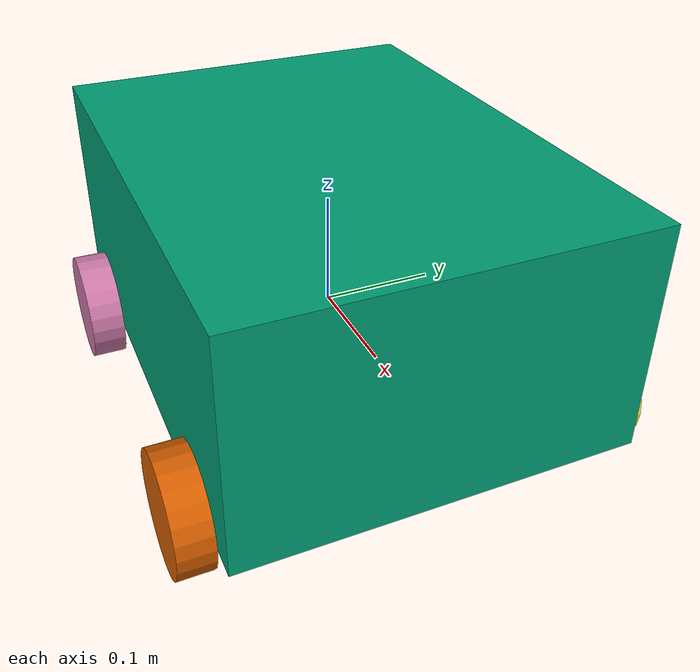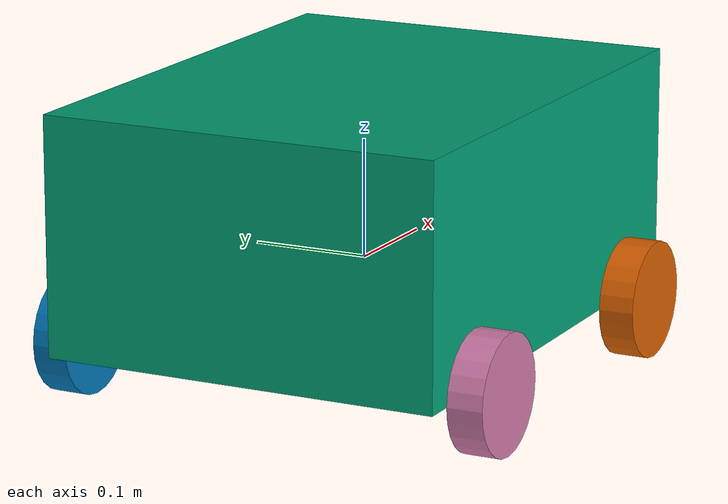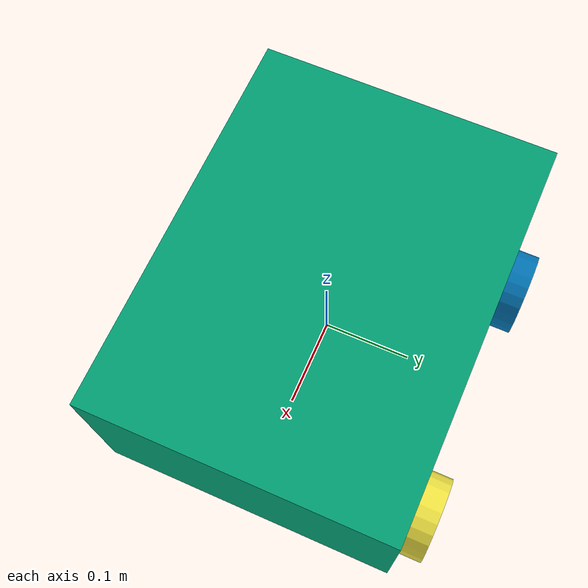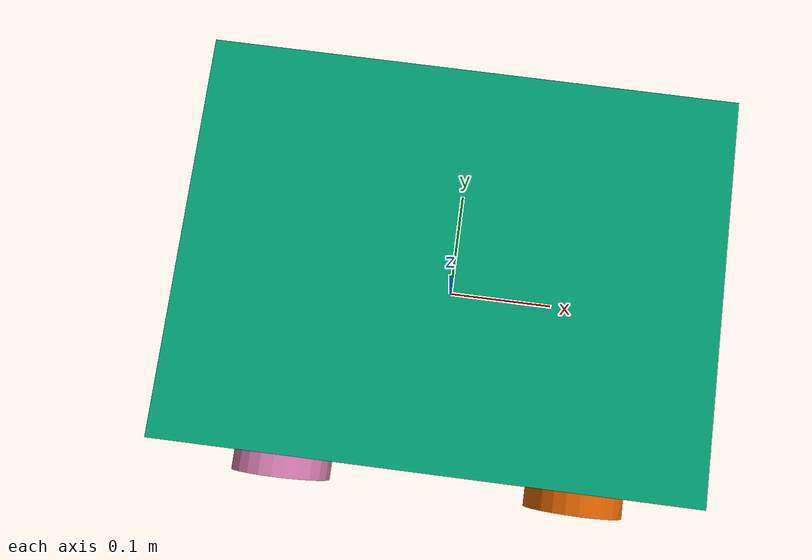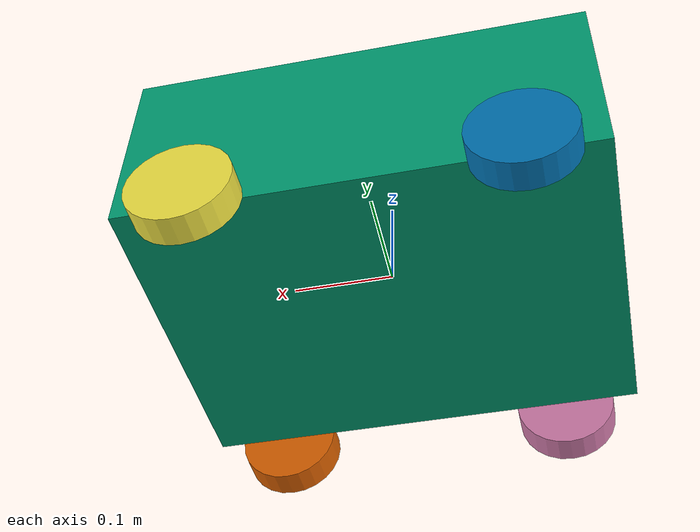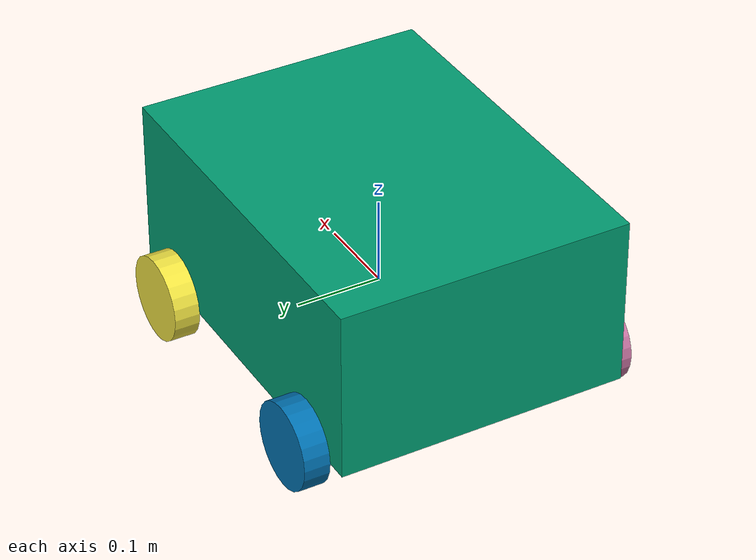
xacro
<?xml version="1.0"?>
<robot xmlns:xacro="http://www.ros.org/wiki/xacro" name="simple_robot">

  <!-- CONSTANTS -->
  <xacro:property name="chassis_width" value="0.34"/>
  <xacro:property name="chassis_length" value="0.45"/>
  <xacro:property name="chassis_height" value="0.2"/>

  <xacro:property name="wheel_radius" value="0.05"/>
  <xacro:property name="wheel_thickness" value="0.03"/>
  <xacro:property name="wheel_separation_x" value="0.3"/>
  <xacro:property name="wheel_separation_y" value="${(chassis_width / 2) + (wheel_thickness / 2)}"/>

  <!-- BASE -->
  <link name="base_link"/>

  <joint name="base_footprint_joint" type="fixed">
    <parent link="base_link"/>
    <child link="base_footprint"/>
    <origin xyz="0 0 0" rpy="0 0 0"/>
  </joint>

  <link name="base_footprint"/>

  <!-- CHASSIS -->
  <joint name="chassis_joint" type="fixed">
    <parent link="base_link"/>
    <child link="chassis"/>
    <origin xyz="0 0 ${wheel_radius}"/>
  </joint>

  <link name="chassis">
    <visual>
      <geometry>
        <box size="${chassis_length} ${chassis_width} ${chassis_height}"/>
      </geometry>
    </visual>
    <collision>
      <geometry>
        <box size="${chassis_length} ${chassis_width} ${chassis_height}"/>
      </geometry>
    </collision>
    <inertial>
      <mass value="1.0"/>
      <inertia ixx="0.1" ixy="0.0" ixz="0.0"
               iyy="0.1" iyz="0.0"
               izz="0.1"/>
    </inertial>
  </link>

  <!-- WHEELS (4) -->

  <!-- FRONT LEFT -->
  <link name="front_left_wheel">
    <visual>
      <geometry>
        <cylinder radius="${wheel_radius}" length="${wheel_thickness}"/>
      </geometry>
    </visual>
    <collision>
      <geometry>
        <cylinder radius="${wheel_radius}" length="${wheel_thickness}"/>
      </geometry>
    </collision>
    <inertial>
      <mass value="0.2"/>
      <inertia ixx="0.001" ixy="0" ixz="0"
               iyy="0.001" iyz="0"
               izz="0.001"/>
    </inertial>
  </link>

  <joint name="front_left_wheel_joint" type="continuous">
    <parent link="base_link"/>
    <child link="front_left_wheel"/>
    <origin xyz="${wheel_separation_x/2} ${wheel_separation_y} -${wheel_radius}" rpy="1.5708 0 0"/>
    <axis xyz="0 0 1"/>
  </joint>

  <!-- REAR LEFT -->
  <link name="rear_left_wheel">
    <visual>
      <geometry>
        <cylinder radius="${wheel_radius}" length="${wheel_thickness}"/>
      </geometry>
    </visual>
    <collision>
      <geometry>
        <cylinder radius="${wheel_radius}" length="${wheel_thickness}"/>
      </geometry>
    </collision>
    <inertial>
      <mass value="0.2"/>
      <inertia ixx="0.001" ixy="0" ixz="0"
               iyy="0.001" iyz="0"
               izz="0.001"/>
    </inertial>
  </link>

  <joint name="rear_left_wheel_joint" type="continuous">
    <parent link="base_link"/>
    <child link="rear_left_wheel"/>
    <origin xyz="-${wheel_separation_x/2} ${wheel_separation_y} -${wheel_radius}" rpy="1.5708 0 0"/>
    <axis xyz="0 0 1"/>
  </joint>

  <!-- FRONT RIGHT -->
  <link name="front_right_wheel">
    <visual>
      <geometry>
        <cylinder radius="${wheel_radius}" length="${wheel_thickness}"/>
      </geometry>
    </visual>
    <collision>
      <geometry>
        <cylinder radius="${wheel_radius}" length="${wheel_thickness}"/>
      </geometry>
    </collision>
    <inertial>
      <mass value="0.2"/>
      <inertia ixx="0.001" ixy="0" ixz="0"
               iyy="0.001" iyz="0"
               izz="0.001"/>
    </inertial>
  </link>

  <joint name="front_right_wheel_joint" type="continuous">
    <parent link="base_link"/>
    <child link="front_right_wheel"/>
    <origin xyz="${wheel_separation_x/2} -${wheel_separation_y} -${wheel_radius}" rpy="1.5708 0 0"/>
    <axis xyz="0 0 1"/>
  </joint>

  <!-- REAR RIGHT -->
  <link name="rear_right_wheel">
    <visual>
      <geometry>
        <cylinder radius="${wheel_radius}" length="${wheel_thickness}"/>
      </geometry>
    </visual>
    <collision>
      <geometry>
        <cylinder radius="${wheel_radius}" length="${wheel_thickness}"/>
      </geometry>
    </collision>
    <inertial>
      <mass value="0.2"/>
      <inertia ixx="0.001" ixy="0" ixz="0"
               iyy="0.001" iyz="0"
               izz="0.001"/>
    </inertial>
  </link>

  <joint name="rear_right_wheel_joint" type="continuous">
    <parent link="base_link"/>
    <child link="rear_right_wheel"/>
    <origin xyz="-${wheel_separation_x/2} -${wheel_separation_y} -${wheel_radius}" rpy="1.5708 0 0"/>
    <axis xyz="0 0 1"/>
  </joint>

  <!-- LIDAR -->
  <link name="lidar_link">
    <inertial>
      <mass value="0.1"/>
      <inertia ixx="0.01" ixy="0.0" ixz="0.0"
               iyy="0.01" iyz="0.0"
               izz="0.01"/>
    </inertial>
  </link>

  <joint name="lidar_joint" type="fixed">
    <parent link="base_link"/>
    <child link="lidar_link"/>
    <origin xyz="0 0 0.2"/>
  </joint>

  <gazebo reference="lidar_link">
    <sensor name="lidar" type="ray">
      <update_rate>10</update_rate>
      <ray>
        <scan>
          <horizontal>
            <samples>360</samples>
            <min_angle>-3.14</min_angle>
            <max_angle>3.14</max_angle>
          </horizontal>
        </scan>
        <range>
          <min>0.1</min>
          <max>10.0</max>
        </range>
      </ray>
      <plugin name="gazebo_ros_laser" filename="libgazebo_ros_ray_sensor.so"/>
    </sensor>
  </gazebo>

  <!-- DIFF DRIVE PLUGIN -->
  <gazebo>
    <plugin name="diff_drive" filename="libgazebo_ros_diff_drive.so">
      <ros>
        <namespace>/</namespace>
      </ros>

      <!-- Multiple joints per side -->
      <left_joint>front_left_wheel_joint</left_joint>
      <left_joint>rear_left_wheel_joint</left_joint>
      <right_joint>front_right_wheel_joint</right_joint>
      <right_joint>rear_right_wheel_joint</right_joint>

      <!-- Robot geometry -->
      <wheel_separation>${wheel_separation_y*2}</wheel_separation>
      <wheel_diameter>${wheel_radius*2}</wheel_diameter>

      <!-- Topics -->
      <command_topic>cmd_vel</command_topic>
      <odometry_topic>odom</odometry_topic>

      <!-- Frames -->
      <odometry_frame>odom</odometry_frame>
      <robot_base_frame>base_link</robot_base_frame>

      <!-- Behavior -->
      <publish_odom>true</publish_odom>
      <publish_odom_tf>true</publish_odom_tf>
    </plugin>
  </gazebo>

</robot>
